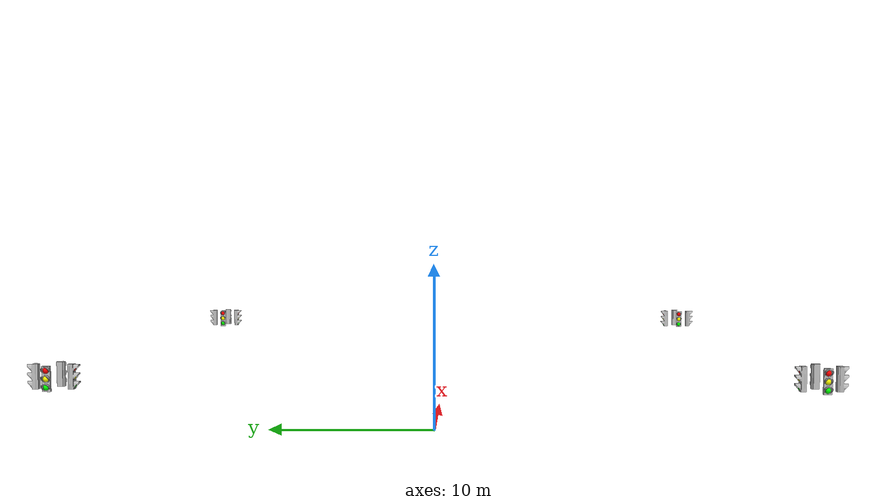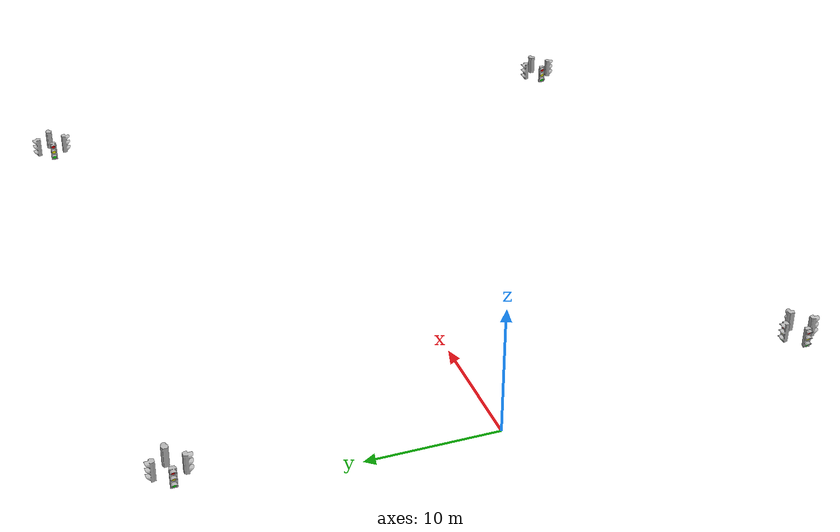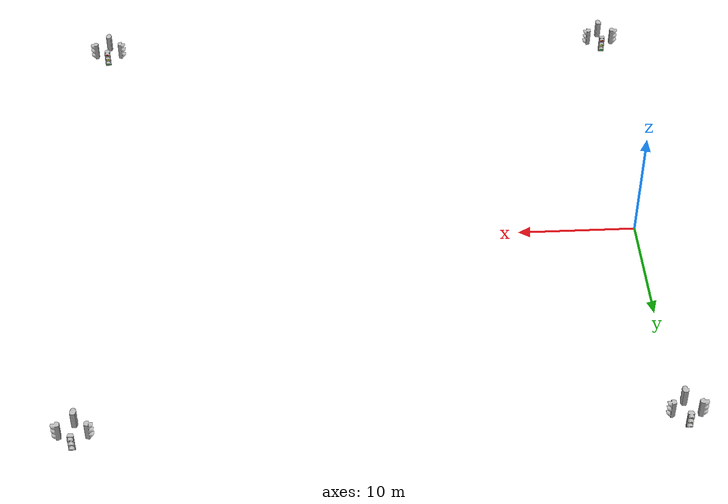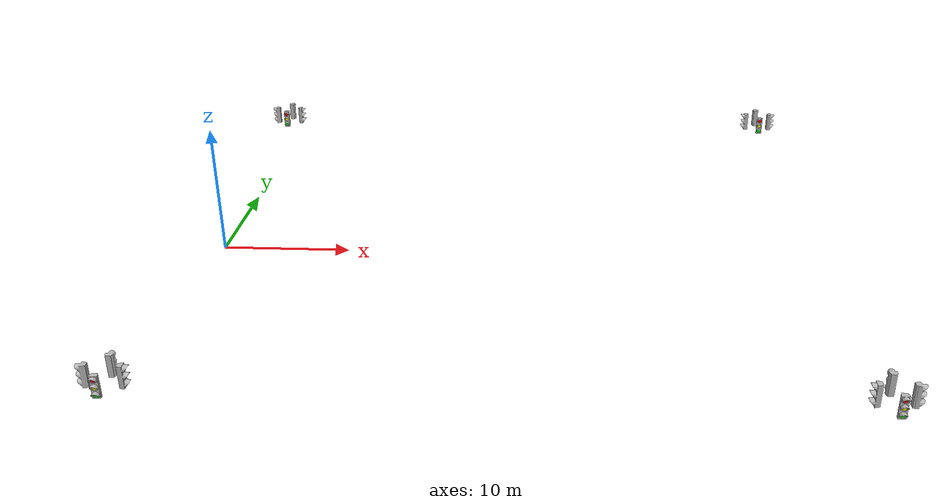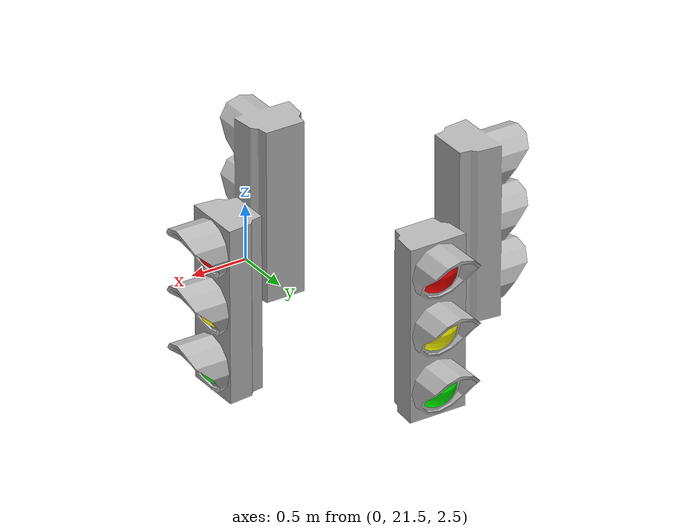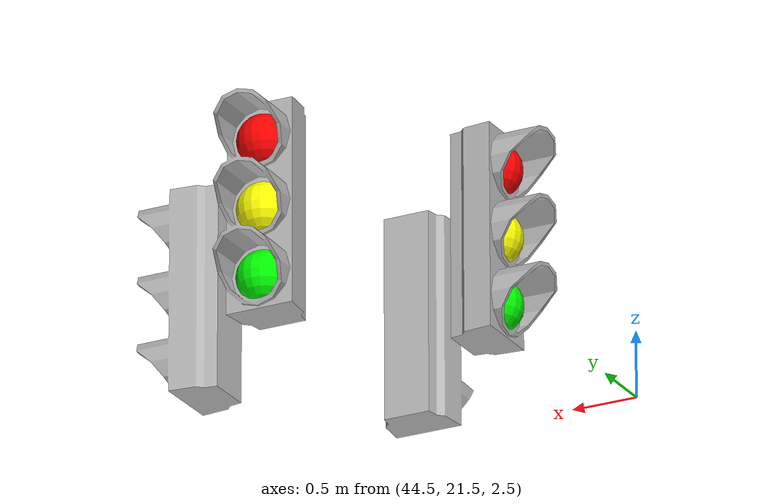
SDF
<sdf version="1.6">
  <model name="stoplights">
    <static>true</static>

    <!-- stoplights on the intersection of the north street and the west street.-->

    <include>
      <name>light_nw_n</name>
      <pose>47 23 4 0 0 1.57</pose>
      <uri>model://models/stoplights/stoplight_a</uri>
    </include>

    <include>
      <name>light_nw_s</name>
      <pose>45 23 4 0 0 -1.57</pose>
      <uri>model://models/stoplights/stoplight_a</uri>
    </include>

    <include>
      <name>light_nw_w</name>
      <pose>46 24 4 0 0 3.14</pose>
      <uri>model://models/stoplights/stoplight_b</uri>
    </include>

    <include>
      <name>light_nw_e</name>
      <pose>46 22 4 0 0 0</pose>
      <uri>model://models/stoplights/stoplight_b</uri>
    </include>

    <!-- stoplights on the intersection of the north street and the east street.-->

    <include>
      <name>light_ne_n</name>
      <pose>47 -23 4 0 0 1.57</pose>
      <uri>model://models/stoplights/stoplight_b</uri>
    </include>

    <include>
      <name>light_ne_s</name>
      <pose>45 -23 4 0 0 -1.57</pose>
      <uri>model://models/stoplights/stoplight_b</uri>
    </include>

    <include>
      <name>light_ne_w</name>
      <pose>46 -22 4 0 0 3.14</pose>
      <uri>model://models/stoplights/stoplight_a</uri>
    </include>

    <include>
      <name>light_ne_e</name>
      <pose>46 -24 4 0 0 0</pose>
      <uri>model://models/stoplights/stoplight_a</uri>
    </include>

    <!-- stoplights on the intersection of the south street and the west street.-->

    <include>
      <name>light_sw_n</name>
      <pose>1 23 4 0 0 1.57</pose>
      <uri>model://models/stoplights/stoplight_b</uri>
    </include>

    <include>
      <name>light_sw_s</name>
      <pose>-1 23 4 0 0 -1.57</pose>
      <uri>model://models/stoplights/stoplight_b</uri>
    </include>

    <include>
      <name>light_sw_w</name>
      <pose>0 24 4 0 0 3.14</pose>
      <uri>model://models/stoplights/stoplight_a</uri>
    </include>

    <include>
      <name>light_sw_e</name>
      <pose>0 22 4 0 0 0</pose>
      <uri>model://models/stoplights/stoplight_a</uri>
    </include>

    <!-- stoplights on the intersection of the south street and the east street.-->

    <include>
      <name>light_se_n</name>
      <pose>1 -23 4 0 0 1.57</pose>
      <uri>model://models/stoplights/stoplight_a</uri>
    </include>

    <include>
      <name>light_se_s</name>
      <pose>-1 -23 4 0 0 -1.57</pose>
      <uri>model://models/stoplights/stoplight_a</uri>
    </include>

    <include>
      <name>light_se_w</name>
      <pose>0 -22 4 0 0 3.14</pose>
      <uri>model://models/stoplights/stoplight_b</uri>
    </include>

    <include>
      <name>light_se_e</name>
      <pose>0 -24 4 0 0 0</pose>
      <uri>model://models/stoplights/stoplight_b</uri>
    </include>

  </model>

</sdf>

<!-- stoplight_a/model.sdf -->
<sdf version="1.6">
  <model name="stoplight_a">

    <static>true</static>

    <link name="link">

      <collision name="collision">
        <geometry>
          <mesh>
            <uri>model://models/stoplights/stoplight_a/meshes/stoplight.obj</uri>
            <scale>0.02 0.02 0.02</scale>
          </mesh>
        </geometry>
      </collision>

      <visual name="frame">
        <geometry>
          <mesh>
            <uri>model://models/stoplights/stoplight_a/meshes/stoplight.obj</uri>
            <scale>0.02 0.02 0.02</scale>
          </mesh>
        </geometry>
      </visual>

      <visual name="red_a">
        <pose>-0.002246 -0.164502 -0.295028 0 0 0</pose>
        <geometry>
          <sphere>
            <radius>0.2024</radius>
          </sphere>
        </geometry>
        <material>
          <script>
            <uri>model://models/stoplights/stoplight_a/materials/scripts/</uri>
            <uri>model://models/stoplights/stoplight_a/materials/textures/</uri>
            <name>StopLight/Light</name>
          </script>
          <ambient>1 0 0 1</ambient>
          <specular>1 0 0 1</specular>
          <!-- Turn a light on by uncommenting emissive -->
        </material>
      </visual>

      <visual name="yellow_a">
        <pose>-0.002246 -0.164502 -0.804 0 0 0</pose>
        <geometry>
          <sphere>
            <radius>0.2024</radius>
          </sphere>
        </geometry>
        <material>
          <script>
            <uri>model://models/stoplights/stoplight_a/materials/scripts/</uri>
            <uri>model://models/stoplights/stoplight_a/materials/textures/</uri>
            <name>StopLight/Light</name>
          </script>
          <ambient>1 1 0 1</ambient>
          <specular>1 1 0 1</specular>
        </material>
      </visual>

      <visual name="green_a">
        <pose>-0.002246 -0.164502 -1.31 0 0 0</pose>
        <geometry>
          <sphere>
            <radius>0.2024</radius>
          </sphere>
        </geometry>
        <material>
          <script>
            <uri>model://models/stoplights/stoplight_a/materials/scripts/</uri>
            <uri>model://models/stoplights/stoplight_a/materials/textures/</uri>
            <name>StopLight/Light</name>
          </script>
          <ambient>0 1 0 1</ambient>
          <specular>0 1 0 1</specular>
        </material>
      </visual>

    </link>
  </model>
</sdf>

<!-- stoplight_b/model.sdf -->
<sdf version="1.6">
  <model name="stoplight_b">

    <static>true</static>

    <link name="link">

      <collision name="collision">
        <geometry>
          <mesh>
            <uri>model://models/stoplights/stoplight_b/meshes/stoplight.obj</uri>
            <scale>0.02 0.02 0.02</scale>
          </mesh>
        </geometry>
      </collision>

      <visual name="frame">
        <geometry>
          <mesh>
            <uri>model://models/stoplights/stoplight_b/meshes/stoplight.obj</uri>
            <scale>0.02 0.02 0.02</scale>
          </mesh>
        </geometry>
      </visual>

      <visual name="red_b">
        <pose>-0.002246 -0.164502 -0.295028 0 0 0</pose>
        <geometry>
          <sphere>
            <radius>0.2024</radius>
          </sphere>
        </geometry>
        <material>
          <script>
            <uri>model://models/stoplights/stoplight_b/materials/scripts/</uri>
            <uri>model://models/stoplights/stoplight_b/materials/textures/</uri>
            <name>StopLight/Light</name>
          </script>
          <ambient>1 0 0 1</ambient>
          <specular>1 0 0 1</specular>
          <!-- Turn a light on by uncommenting emissive -->
        </material>
      </visual>

      <visual name="yellow_b">
        <pose>-0.002246 -0.164502 -0.804 0 0 0</pose>
        <geometry>
          <sphere>
            <radius>0.2024</radius>
          </sphere>
        </geometry>
        <material>
          <script>
            <uri>model://models/stoplights/stoplight_b/materials/scripts/</uri>
            <uri>model://models/stoplights/stoplight_b/materials/textures/</uri>
            <name>StopLight/Light</name>
          </script>
          <ambient>1 1 0 1</ambient>
          <specular>1 1 0 1</specular>
        </material>
      </visual>

      <visual name="green_b">
        <pose>-0.002246 -0.164502 -1.31 0 0 0</pose>
        <geometry>
          <sphere>
            <radius>0.2024</radius>
          </sphere>
        </geometry>
        <material>
          <script>
            <uri>model://models/stoplights/stoplight_b/materials/scripts/</uri>
            <uri>model://models/stoplights/stoplight_b/materials/textures/</uri>
            <name>StopLight/Light</name>
          </script>
          <ambient>0 1 0 1</ambient>
          <specular>0 1 0 1</specular>
        </material>
      </visual>

    </link>
  </model>
</sdf>
